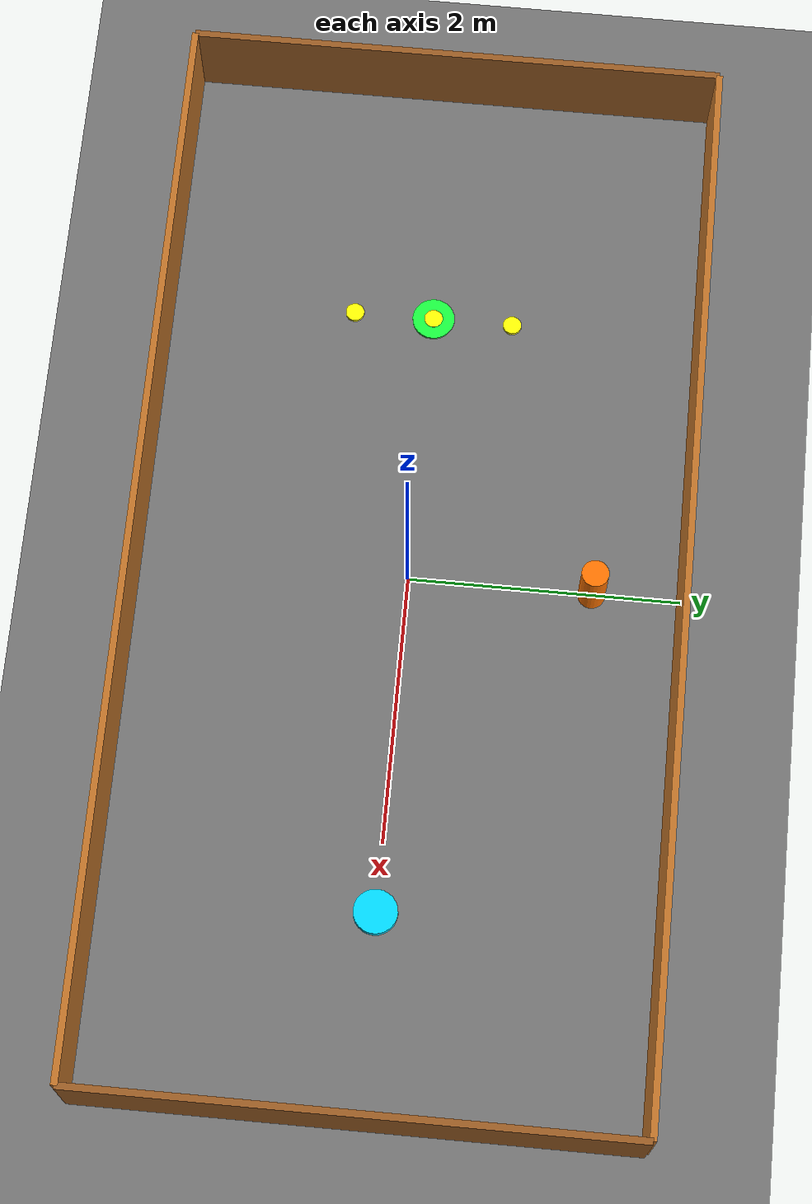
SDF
<sdf version="1.9">
 <world name="three_crazyflie_world">
  <physics name="1ms" type="ignored">
   <max_step_size>0.001</max_step_size>
   <real_time_factor>1.0</real_time_factor>
  </physics>
  <plugin filename="gz-sim-physics-system" name="gz::sim::systems::Physics"/>
  <plugin filename="gz-sim-user-commands-system" name="gz::sim::systems::UserCommands"/>
  <plugin filename="gz-sim-scene-broadcaster-system" name="gz::sim::systems::SceneBroadcaster"/>
  <light type="directional" name="sun">
   <pose>0 0 8 0 0 0</pose>
   <diffuse>0.95 0.95 0.95 1</diffuse>
   <specular>0.25 0.25 0.25 1</specular>
   <direction>-0.4 0.2 -0.9</direction>
  </light>
  <model name="ground_plane">
   <static>true</static>
   <link name="link">
    <collision name="collision">
     <geometry><plane><normal>0 0 1</normal><size>8 4</size></plane></geometry>
    </collision>
    <visual name="visual">
     <geometry><plane><normal>0 0 1</normal><size>8 4</size></plane></geometry>
     <material>
      <ambient>0.42 0.42 0.42 1</ambient>
      <diffuse>0.45 0.45 0.45 1</diffuse>
      <specular>0.05 0.05 0.05 1</specular>
     </material>
    </visual>
   </link>
  </model>
  <model name="left_wall">
   <static>true</static>
   <pose>0 2.0 0.35 0 0 0</pose>
   <link name="link">
    <collision name="collision"><geometry><box><size>8.0 0.05 0.7</size></box></geometry></collision>
    <visual name="visual">
     <geometry><box><size>8.0 0.05 0.7</size></box></geometry>
     <material>
      <ambient>0.70 0.42 0.14 1</ambient>
      <diffuse>0.75 0.45 0.16 1</diffuse>
      <specular>0.10 0.10 0.10 1</specular>
     </material>
    </visual>
   </link>
  </model>
  <model name="right_wall">
   <static>true</static>
   <pose>0 -2.0 0.35 0 0 0</pose>
   <link name="link">
    <collision name="collision"><geometry><box><size>8.0 0.05 0.7</size></box></geometry></collision>
    <visual name="visual">
     <geometry><box><size>8.0 0.05 0.7</size></box></geometry>
     <material>
      <ambient>0.70 0.42 0.14 1</ambient>
      <diffuse>0.75 0.45 0.16 1</diffuse>
      <specular>0.10 0.10 0.10 1</specular>
     </material>
    </visual>
   </link>
  </model>
  <model name="back_wall">
   <static>true</static>
   <pose>-4.0 0 0.35 0 0 0</pose>
   <link name="link">
    <collision name="collision"><geometry><box><size>0.05 4.0 0.7</size></box></geometry></collision>
    <visual name="visual">
     <geometry><box><size>0.05 4.0 0.7</size></box></geometry>
     <material>
      <ambient>0.55 0.32 0.12 1</ambient>
      <diffuse>0.60 0.36 0.14 1</diffuse>
      <specular>0.10 0.10 0.10 1</specular>
     </material>
    </visual>
   </link>
  </model>
  <model name="front_wall">
   <static>true</static>
   <pose>4.0 0 0.35 0 0 0</pose>
   <link name="link">
    <collision name="collision"><geometry><box><size>0.05 4.0 0.7</size></box></geometry></collision>
    <visual name="visual">
     <geometry><box><size>0.05 4.0 0.7</size></box></geometry>
     <material>
      <ambient>0.55 0.32 0.12 1</ambient>
      <diffuse>0.60 0.36 0.14 1</diffuse>
      <specular>0.10 0.10 0.10 1</specular>
     </material>
    </visual>
   </link>
  </model>
  <model name="start_marker">
   <static>true</static>
   <pose>-2.1 0 0.01 0 0 0</pose>
   <link name="link">
    <visual name="visual">
     <geometry><cylinder><radius>0.16</radius><length>0.02</length></cylinder></geometry>
     <material>
      <ambient>0.1 1.0 0.25 1</ambient>
      <diffuse>0.1 1.0 0.25 1</diffuse>
      <specular>0.2 0.2 0.2 1</specular>
     </material>
    </visual>
   </link>
  </model>
  <model name="goal_marker">
   <static>true</static>
   <pose>2.5 0 0.03 0 0 0</pose>
   <link name="link">
    <visual name="visual">
     <geometry><cylinder><radius>0.16</radius><length>0.06</length></cylinder></geometry>
     <material>
      <ambient>0.0 0.85 1.0 1</ambient>
      <diffuse>0.0 0.85 1.0 1</diffuse>
      <specular>0.3 0.3 0.3 1</specular>
     </material>
    </visual>
   </link>
  </model>
  <model name="cf1_start_marker">
   <static>true</static>
   <pose>-2.1 0.0 0.012 0 0 0</pose>
   <link name="link">
    <visual name="visual">
     <geometry><cylinder><radius>0.07</radius><length>0.024</length></cylinder></geometry>
     <material><ambient>1.0 1.0 0.0 1</ambient><diffuse>1.0 1.0 0.0 1</diffuse></material>
    </visual>
   </link>
  </model>
  <model name="cf2_start_marker">
   <static>true</static>
   <pose>-2.1 0.6 0.012 0 0 0</pose>
   <link name="link">
    <visual name="visual">
     <geometry><cylinder><radius>0.07</radius><length>0.024</length></cylinder></geometry>
     <material><ambient>1.0 1.0 0.0 1</ambient><diffuse>1.0 1.0 0.0 1</diffuse></material>
    </visual>
   </link>
  </model>
  <model name="cf3_start_marker">
   <static>true</static>
   <pose>-2.1 -0.6 0.012 0 0 0</pose>
   <link name="link">
    <visual name="visual">
     <geometry><cylinder><radius>0.07</radius><length>0.024</length></cylinder></geometry>
     <material><ambient>1.0 1.0 0.0 1</ambient><diffuse>1.0 1.0 0.0 1</diffuse></material>
    </visual>
   </link>
  </model>
  <model name="obstacle_1">
   <static>true</static>
   <pose>0.0 1.35 0.25 0 0 0</pose>
   <link name="link">
    <collision name="collision">
     <geometry><cylinder><radius>0.10</radius><length>0.50</length></cylinder></geometry>
    </collision>
    <visual name="visual">
     <geometry><cylinder><radius>0.10</radius><length>0.50</length></cylinder></geometry>
     <material>
      <ambient>1.0 0.45 0.0 1</ambient>
      <diffuse>1.0 0.45 0.0 1</diffuse>
      <specular>0.25 0.25 0.25 1</specular>
     </material>
    </visual>
   </link>
  </model>
 </world>
</sdf>
